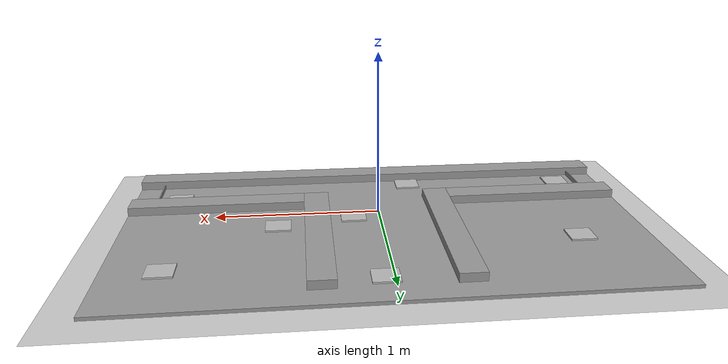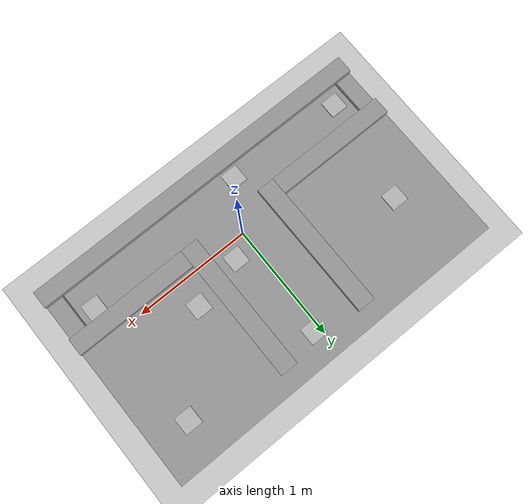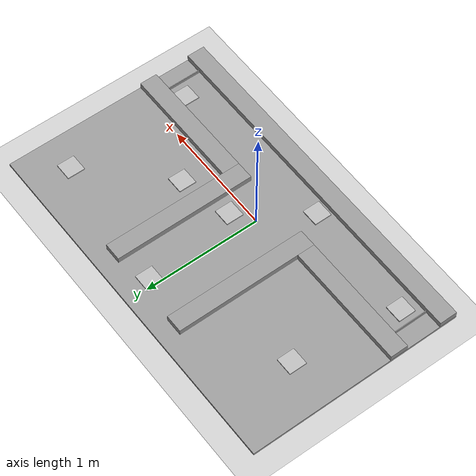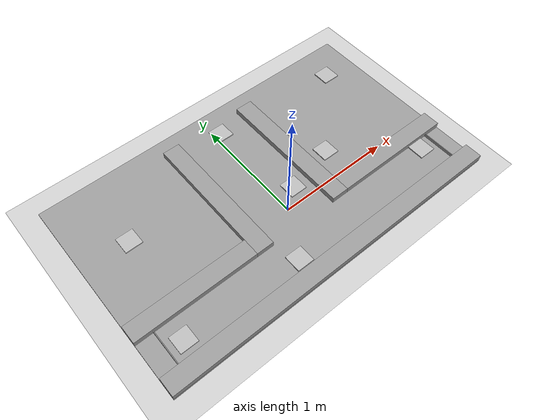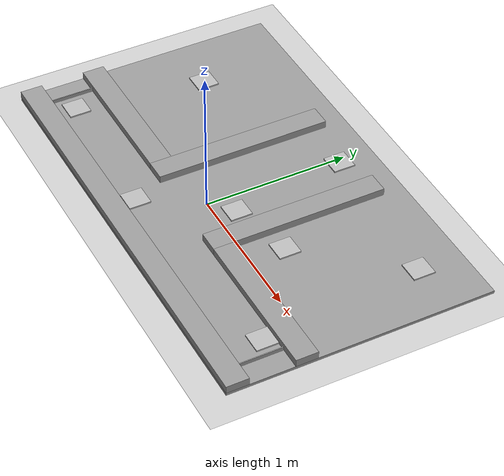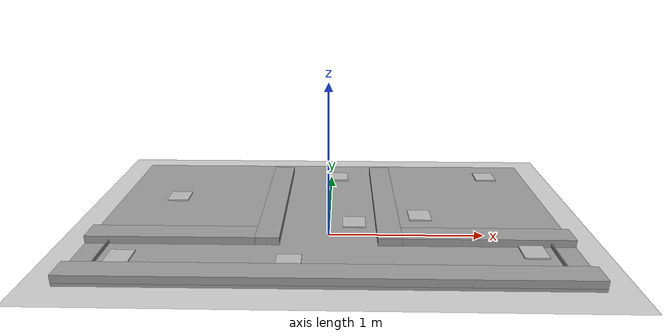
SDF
<sdf version="1.7">
 <world name="default">
  <light name="sun" type="directional">
   <pose>0 0 10 0 -0 0</pose>
   <diffuse>0.8 0.8 0.8 1</diffuse>
   <specular>0.2 0.2 0.2 1</specular>
   <attenuation>
    <range>1000</range>
    <constant>0.9</constant>
    <linear>0.01</linear>
    <quadratic>0.001</quadratic>
   </attenuation>
   <direction>-0.5 0.1 -0.9</direction>
   <spot><inner_angle>0</inner_angle><outer_angle>0</outer_angle><falloff>0</falloff></spot>
  </light>
  <model name="ground_plane">
   <static>1</static>
   <link name="link">
    <collision name="collision">
     <geometry><plane><normal>0 0 1</normal><size>100 100</size></plane></geometry>
     <surface>
      <contact><collide_bitmask>65535</collide_bitmask></contact>
      <friction><ode><mu>100</mu><mu2>50</mu2></ode></friction>
     </surface>
    </collision>
    <visual name="visual">
     <cast_shadows>0</cast_shadows>
     <geometry><plane><normal>0 0 1</normal><size>100 100</size></plane></geometry>
     <material>
      <script><uri>file://media/materials/scripts/gazebo.material</uri><name>Gazebo/Grey</name></script>
     </material>
    </visual>
   </link>
  </model>
  <gravity>0 0 -9.8</gravity>
  <magnetic_field>6e-06 2.3e-05 -4.2e-05</magnetic_field>
  <atmosphere type="adiabatic"/>
  <physics type="ode">
   <max_step_size>0.001</max_step_size>
   <real_time_factor>1</real_time_factor>
   <real_time_update_rate>1000</real_time_update_rate>
  </physics>
  <scene><ambient>0.4 0.4 0.4 1</ambient><background>0.7 0.7 0.7 1</background><shadows>1</shadows></scene>
  <spherical_coordinates>
   <surface_model>EARTH_WGS84</surface_model>
   <latitude_deg>0</latitude_deg>
   <longitude_deg>0</longitude_deg>
   <elevation>0</elevation>
   <heading_deg>0</heading_deg>
  </spherical_coordinates>
  <model name="nosignal_ps1.world">
   <link name="link_0">
    <inertial>
     <mass>1</mass>
     <inertia>
      <ixx>0.166667</ixx>
      <ixy>0</ixy>
      <ixz>0</ixz>
      <iyy>0.166667</iyy>
      <iyz>0</iyz>
      <izz>0.166667</izz>
     </inertia>
    </inertial>
    <pose>0 0.314325 -0.0278 0 -0 0</pose>
    <visual name="visual">
     <geometry><box><size>3.048 1.8288 0.02</size></box></geometry>
     <material>
      <lighting>1</lighting>
      <script><uri>file://media/materials/scripts/gazebo.material</uri><name>Gazebo/Grey</name></script>
      <shader type="pixel"><normal_map>__default__</normal_map></shader>
      <ambient>0.3 0.3 0.3 1</ambient>
      <diffuse>0.7 0.7 0.7 1</diffuse>
      <specular>0.01 0.01 0.01 1</specular>
      <emissive>0 0 0 1</emissive>
     </material>
    </visual>
    <collision name="collision">
     <geometry><box><size>3.048 1.8288 0.02</size></box></geometry>
     <surface>
      <friction>
       <ode><mu>1</mu><mu2>1</mu2><fdir1>0 0 0</fdir1><slip1>0</slip1><slip2>0</slip2></ode>
       <torsional>
        <coefficient>1</coefficient>
        <patch_radius>0</patch_radius>
        <surface_radius>0</surface_radius>
        <use_patch_radius>1</use_patch_radius>
        <ode><slip>0</slip></ode>
       </torsional>
      </friction>
      <bounce><restitution_coefficient>0</restitution_coefficient><threshold>1e+06</threshold></bounce>
      <contact>
       <collide_without_contact>0</collide_without_contact>
       <collide_without_contact_bitmask>1</collide_without_contact_bitmask>
       <collide_bitmask>1</collide_bitmask>
       <ode>
        <soft_cfm>0</soft_cfm>
        <soft_erp>0.2</soft_erp>
        <kp>1e+13</kp>
        <kd>1</kd>
        <max_vel>0.01</max_vel>
        <min_depth>0</min_depth>
       </ode>
       <bullet>
        <split_impulse>1</split_impulse>
        <split_impulse_penetration_threshold>-0.01</split_impulse_penetration_threshold>
        <soft_cfm>0</soft_cfm>
        <soft_erp>0.2</soft_erp>
        <kp>1e+13</kp>
        <kd>1</kd>
       </bullet>
      </contact>
     </surface>
    </collision>
   </link>
   <link name="link_1">
    <inertial>
     <mass>1</mass>
     <inertia>
      <ixx>0.166667</ixx>
      <ixy>0</ixy>
      <ixz>0</ixz>
      <iyy>0.166667</iyy>
      <iyz>0</iyz>
      <izz>0.166667</izz>
     </inertia>
    </inertial>
    <pose>0.381 0.466725 0.0076 0 -0 0</pose>
    <visual name="visual">
     <geometry><box><size>0.1524 1.2192 0.0508</size></box></geometry>
     <material>
      <lighting>1</lighting>
      <script><uri>file://media/materials/scripts/gazebo.material</uri><name>Gazebo/Grey</name></script>
      <shader type="pixel"><normal_map>__default__</normal_map></shader>
      <ambient>0.3 0.3 0.3 1</ambient>
      <diffuse>0.7 0.7 0.7 1</diffuse>
      <specular>0.01 0.01 0.01 1</specular>
      <emissive>0 0 0 1</emissive>
     </material>
    </visual>
    <collision name="collision">
     <geometry><box><size>0.1524 1.2192 0.0708</size></box></geometry>
     <surface>
      <friction>
       <ode><mu>1</mu><mu2>1</mu2><fdir1>0 0 0</fdir1><slip1>0</slip1><slip2>0</slip2></ode>
       <torsional>
        <coefficient>1</coefficient>
        <patch_radius>0</patch_radius>
        <surface_radius>0</surface_radius>
        <use_patch_radius>1</use_patch_radius>
        <ode><slip>0</slip></ode>
       </torsional>
      </friction>
      <bounce><restitution_coefficient>0</restitution_coefficient><threshold>1e+06</threshold></bounce>
      <contact>
       <collide_without_contact>0</collide_without_contact>
       <collide_without_contact_bitmask>1</collide_without_contact_bitmask>
       <collide_bitmask>1</collide_bitmask>
       <ode>
        <soft_cfm>0</soft_cfm>
        <soft_erp>0.2</soft_erp>
        <kp>1e+13</kp>
        <kd>1</kd>
        <max_vel>0.01</max_vel>
        <min_depth>0</min_depth>
       </ode>
       <bullet>
        <split_impulse>1</split_impulse>
        <split_impulse_penetration_threshold>-0.01</split_impulse_penetration_threshold>
        <soft_cfm>0</soft_cfm>
        <soft_erp>0.2</soft_erp>
        <kp>1e+13</kp>
        <kd>1</kd>
       </bullet>
      </contact>
     </surface>
    </collision>
   </link>
   <link name="link_2">
    <inertial>
     <mass>1</mass>
     <inertia>
      <ixx>0.166667</ixx>
      <ixy>0</ixy>
      <ixz>0</ixz>
      <iyy>0.166667</iyy>
      <iyz>0</iyz>
      <izz>0.166667</izz>
     </inertia>
    </inertial>
    <pose>-0.381 0.466725 0.0076 0 -0 0</pose>
    <visual name="visual">
     <geometry><box><size>0.1524 1.2192 0.0508</size></box></geometry>
     <material>
      <lighting>1</lighting>
      <script><uri>file://media/materials/scripts/gazebo.material</uri><name>Gazebo/Grey</name></script>
      <shader type="pixel"><normal_map>__default__</normal_map></shader>
      <ambient>0.3 0.3 0.3 1</ambient>
      <diffuse>0.7 0.7 0.7 1</diffuse>
      <specular>0.01 0.01 0.01 1</specular>
      <emissive>0 0 0 1</emissive>
     </material>
    </visual>
    <collision name="collision">
     <geometry><box><size>0.1524 1.2192 0.0508</size></box></geometry>
     <surface>
      <friction>
       <ode><mu>1</mu><mu2>1</mu2><fdir1>0 0 0</fdir1><slip1>0</slip1><slip2>0</slip2></ode>
       <torsional>
        <coefficient>1</coefficient>
        <patch_radius>0</patch_radius>
        <surface_radius>0</surface_radius>
        <use_patch_radius>1</use_patch_radius>
        <ode><slip>0</slip></ode>
       </torsional>
      </friction>
      <bounce><restitution_coefficient>0</restitution_coefficient><threshold>1e+06</threshold></bounce>
      <contact>
       <collide_without_contact>0</collide_without_contact>
       <collide_without_contact_bitmask>1</collide_without_contact_bitmask>
       <collide_bitmask>1</collide_bitmask>
       <ode>
        <soft_cfm>0</soft_cfm>
        <soft_erp>0.2</soft_erp>
        <kp>1e+13</kp>
        <kd>1</kd>
        <max_vel>0.01</max_vel>
        <min_depth>0</min_depth>
       </ode>
       <bullet>
        <split_impulse>1</split_impulse>
        <split_impulse_penetration_threshold>-0.01</split_impulse_penetration_threshold>
        <soft_cfm>0</soft_cfm>
        <soft_erp>0.2</soft_erp>
        <kp>1e+13</kp>
        <kd>1</kd>
       </bullet>
      </contact>
     </surface>
    </collision>
   </link>
   <link name="link_3">
    <inertial>
     <mass>1</mass>
     <inertia>
      <ixx>0.166667</ixx>
      <ixy>0</ixy>
      <ixz>0</ixz>
      <iyy>0.166667</iyy>
      <iyz>0</iyz>
      <izz>0.166667</izz>
     </inertia>
    </inertial>
    <pose>0.9906 -0.066675 0.0076 0 -0 0</pose>
    <visual name="visual">
     <geometry><box><size>1.0668 0.1524 0.0508</size></box></geometry>
     <material>
      <lighting>1</lighting>
      <script><uri>file://media/materials/scripts/gazebo.material</uri><name>Gazebo/Grey</name></script>
      <shader type="pixel"><normal_map>__default__</normal_map></shader>
      <ambient>0.3 0.3 0.3 1</ambient>
      <diffuse>0.7 0.7 0.7 1</diffuse>
      <specular>0.01 0.01 0.01 1</specular>
      <emissive>0 0 0 1</emissive>
     </material>
    </visual>
    <collision name="collision">
     <geometry><box><size>1.0668 0.1524 0.0508</size></box></geometry>
     <surface>
      <friction>
       <ode><mu>1</mu><mu2>1</mu2><fdir1>0 0 0</fdir1><slip1>0</slip1><slip2>0</slip2></ode>
       <torsional>
        <coefficient>1</coefficient>
        <patch_radius>0</patch_radius>
        <surface_radius>0</surface_radius>
        <use_patch_radius>1</use_patch_radius>
        <ode><slip>0</slip></ode>
       </torsional>
      </friction>
      <bounce><restitution_coefficient>0</restitution_coefficient><threshold>1e+06</threshold></bounce>
      <contact>
       <collide_without_contact>0</collide_without_contact>
       <collide_without_contact_bitmask>1</collide_without_contact_bitmask>
       <collide_bitmask>1</collide_bitmask>
       <ode>
        <soft_cfm>0</soft_cfm>
        <soft_erp>0.2</soft_erp>
        <kp>1e+13</kp>
        <kd>1</kd>
        <max_vel>0.01</max_vel>
        <min_depth>0</min_depth>
       </ode>
       <bullet>
        <split_impulse>1</split_impulse>
        <split_impulse_penetration_threshold>-0.01</split_impulse_penetration_threshold>
        <soft_cfm>0</soft_cfm>
        <soft_erp>0.2</soft_erp>
        <kp>1e+13</kp>
        <kd>1</kd>
       </bullet>
      </contact>
     </surface>
    </collision>
   </link>
   <link name="link_4">
    <inertial>
     <mass>1</mass>
     <inertia>
      <ixx>0.166667</ixx>
      <ixy>0</ixy>
      <ixz>0</ixz>
      <iyy>0.166667</iyy>
      <iyz>0</iyz>
      <izz>0.166667</izz>
     </inertia>
    </inertial>
    <pose>-0.9906 -0.066675 0.0076 0 -0 0</pose>
    <visual name="visual">
     <geometry><box><size>1.0668 0.1524 0.0508</size></box></geometry>
     <material>
      <lighting>1</lighting>
      <script><uri>file://media/materials/scripts/gazebo.material</uri><name>Gazebo/Grey</name></script>
      <shader type="pixel"><normal_map>__default__</normal_map></shader>
      <ambient>0.3 0.3 0.3 1</ambient>
      <diffuse>0.7 0.7 0.7 1</diffuse>
      <specular>0.01 0.01 0.01 1</specular>
      <emissive>0 0 0 1</emissive>
     </material>
    </visual>
    <collision name="collision">
     <geometry><box><size>1.0668 0.1524 0.0508</size></box></geometry>
     <surface>
      <friction>
       <ode><mu>1</mu><mu2>1</mu2><fdir1>0 0 0</fdir1><slip1>0</slip1><slip2>0</slip2></ode>
       <torsional>
        <coefficient>1</coefficient>
        <patch_radius>0</patch_radius>
        <surface_radius>0</surface_radius>
        <use_patch_radius>1</use_patch_radius>
        <ode><slip>0</slip></ode>
       </torsional>
      </friction>
      <bounce><restitution_coefficient>0</restitution_coefficient><threshold>1e+06</threshold></bounce>
      <contact>
       <collide_without_contact>0</collide_without_contact>
       <collide_without_contact_bitmask>1</collide_without_contact_bitmask>
       <collide_bitmask>1</collide_bitmask>
       <ode>
        <soft_cfm>0</soft_cfm>
        <soft_erp>0.2</soft_erp>
        <kp>1e+13</kp>
        <kd>1</kd>
        <max_vel>0.01</max_vel>
        <min_depth>0</min_depth>
       </ode>
       <bullet>
        <split_impulse>1</split_impulse>
        <split_impulse_penetration_threshold>-0.01</split_impulse_penetration_threshold>
        <soft_cfm>0</soft_cfm>
        <soft_erp>0.2</soft_erp>
        <kp>1e+13</kp>
        <kd>1</kd>
       </bullet>
      </contact>
     </surface>
    </collision>
   </link>
   <link name="link_5">
    <inertial>
     <mass>1</mass>
     <inertia>
      <ixx>0.166667</ixx>
      <ixy>0</ixy>
      <ixz>0</ixz>
      <iyy>0.166667</iyy>
      <iyz>0</iyz>
      <izz>0.166667</izz>
     </inertia>
    </inertial>
    <pose>0 -0.523875 0.0076 0 -0 0</pose>
    <visual name="visual">
     <geometry><box><size>3.048 0.1524 0.0508</size></box></geometry>
     <material>
      <lighting>1</lighting>
      <script><uri>file://media/materials/scripts/gazebo.material</uri><name>Gazebo/Grey</name></script>
      <shader type="pixel"><normal_map>__default__</normal_map></shader>
      <ambient>0.3 0.3 0.3 1</ambient>
      <diffuse>0.7 0.7 0.7 1</diffuse>
      <specular>0.01 0.01 0.01 1</specular>
      <emissive>0 0 0 1</emissive>
     </material>
    </visual>
    <collision name="collision">
     <geometry><box><size>3.048 0.1524 0.0508</size></box></geometry>
     <surface>
      <friction>
       <ode><mu>1</mu><mu2>1</mu2><fdir1>0 0 0</fdir1><slip1>0</slip1><slip2>0</slip2></ode>
       <torsional>
        <coefficient>1</coefficient>
        <patch_radius>0</patch_radius>
        <surface_radius>0</surface_radius>
        <use_patch_radius>1</use_patch_radius>
        <ode><slip>0</slip></ode>
       </torsional>
      </friction>
      <bounce><restitution_coefficient>0</restitution_coefficient><threshold>1e+06</threshold></bounce>
      <contact>
       <collide_without_contact>0</collide_without_contact>
       <collide_without_contact_bitmask>1</collide_without_contact_bitmask>
       <collide_bitmask>1</collide_bitmask>
       <ode>
        <soft_cfm>0</soft_cfm>
        <soft_erp>0.2</soft_erp>
        <kp>1e+13</kp>
        <kd>1</kd>
        <max_vel>0.01</max_vel>
        <min_depth>0</min_depth>
       </ode>
       <bullet>
        <split_impulse>1</split_impulse>
        <split_impulse_penetration_threshold>-0.01</split_impulse_penetration_threshold>
        <soft_cfm>0</soft_cfm>
        <soft_erp>0.2</soft_erp>
        <kp>1e+13</kp>
        <kd>1</kd>
       </bullet>
      </contact>
     </surface>
    </collision>
   </link>
   <link name="link_6">
    <inertial>
     <mass>1</mass>
     <inertia>
      <ixx>0.166667</ixx>
      <ixy>0</ixy>
      <ixz>0</ixz>
      <iyy>0.166667</iyy>
      <iyz>0</iyz>
      <izz>0.166667</izz>
     </inertia>
    </inertial>
    <pose>1.3716 -0.295275 -0.0051 0 -0 0</pose>
    <visual name="visual">
     <geometry><box><size>0.00635 0.3048 0.0254</size></box></geometry>
     <material>
      <lighting>1</lighting>
      <script><uri>file://media/materials/scripts/gazebo.material</uri><name>Gazebo/Grey</name></script>
      <shader type="pixel"><normal_map>__default__</normal_map></shader>
      <ambient>0.3 0.3 0.3 1</ambient>
      <diffuse>0.7 0.7 0.7 1</diffuse>
      <specular>0.01 0.01 0.01 1</specular>
      <emissive>0 0 0 1</emissive>
     </material>
    </visual>
    <collision name="collision">
     <geometry><box><size>0.00635 0.3048 0.0254</size></box></geometry>
     <surface>
      <friction>
       <ode><mu>1</mu><mu2>1</mu2><fdir1>0 0 0</fdir1><slip1>0</slip1><slip2>0</slip2></ode>
       <torsional>
        <coefficient>1</coefficient>
        <patch_radius>0</patch_radius>
        <surface_radius>0</surface_radius>
        <use_patch_radius>1</use_patch_radius>
        <ode><slip>0</slip></ode>
       </torsional>
      </friction>
      <bounce><restitution_coefficient>0</restitution_coefficient><threshold>1e+06</threshold></bounce>
      <contact>
       <collide_without_contact>0</collide_without_contact>
       <collide_without_contact_bitmask>1</collide_without_contact_bitmask>
       <collide_bitmask>1</collide_bitmask>
       <ode>
        <soft_cfm>0</soft_cfm>
        <soft_erp>0.2</soft_erp>
        <kp>1e+13</kp>
        <kd>1</kd>
        <max_vel>0.01</max_vel>
        <min_depth>0</min_depth>
       </ode>
       <bullet>
        <split_impulse>1</split_impulse>
        <split_impulse_penetration_threshold>-0.01</split_impulse_penetration_threshold>
        <soft_cfm>0</soft_cfm>
        <soft_erp>0.2</soft_erp>
        <kp>1e+13</kp>
        <kd>1</kd>
       </bullet>
      </contact>
     </surface>
    </collision>
   </link>
   <link name="link_7">
    <inertial>
     <mass>1</mass>
     <inertia>
      <ixx>0.166667</ixx>
      <ixy>0</ixy>
      <ixz>0</ixz>
      <iyy>0.166667</iyy>
      <iyz>0</iyz>
      <izz>0.166667</izz>
     </inertia>
    </inertial>
    <pose>-1.3716 -0.295275 -0.0051 0 -0 0</pose>
    <visual name="visual">
     <geometry><box><size>0.00635 0.3048 0.0254</size></box></geometry>
     <material>
      <lighting>1</lighting>
      <script><uri>file://media/materials/scripts/gazebo.material</uri><name>Gazebo/Grey</name></script>
      <shader type="pixel"><normal_map>__default__</normal_map></shader>
      <ambient>0.3 0.3 0.3 1</ambient>
      <diffuse>0.7 0.7 0.7 1</diffuse>
      <specular>0.01 0.01 0.01 1</specular>
      <emissive>0 0 0 1</emissive>
     </material>
    </visual>
    <collision name="collision">
     <geometry><box><size>0.00635 0.3048 0.0254</size></box></geometry>
     <surface>
      <friction>
       <ode><mu>1</mu><mu2>1</mu2><fdir1>0 0 0</fdir1><slip1>0</slip1><slip2>0</slip2></ode>
       <torsional>
        <coefficient>1</coefficient>
        <patch_radius>0</patch_radius>
        <surface_radius>0</surface_radius>
        <use_patch_radius>1</use_patch_radius>
        <ode><slip>0</slip></ode>
       </torsional>
      </friction>
      <bounce><restitution_coefficient>0</restitution_coefficient><threshold>1e+06</threshold></bounce>
      <contact>
       <collide_without_contact>0</collide_without_contact>
       <collide_without_contact_bitmask>1</collide_without_contact_bitmask>
       <collide_bitmask>1</collide_bitmask>
       <ode>
        <soft_cfm>0</soft_cfm>
        <soft_erp>0.2</soft_erp>
        <kp>1e+13</kp>
        <kd>1</kd>
        <max_vel>0.01</max_vel>
        <min_depth>0</min_depth>
       </ode>
       <bullet>
        <split_impulse>1</split_impulse>
        <split_impulse_penetration_threshold>-0.01</split_impulse_penetration_threshold>
        <soft_cfm>0</soft_cfm>
        <soft_erp>0.2</soft_erp>
        <kp>1e+13</kp>
        <kd>1</kd>
       </bullet>
      </contact>
     </surface>
    </collision>
   </link>
   <joint name="link_0_JOINT_1" type="fixed">
    <parent>link_0</parent>
    <child>link_1</child>
    <physics>
     <ode><limit><cfm>0</cfm><erp>0.2</erp></limit><suspension><cfm>0</cfm><erp>0.2</erp></suspension></ode>
    </physics>
   </joint>
   <joint name="link_0_JOINT_2" type="fixed">
    <parent>link_0</parent>
    <child>link_3</child>
    <physics>
     <ode><limit><cfm>0</cfm><erp>0.2</erp></limit><suspension><cfm>0</cfm><erp>0.2</erp></suspension></ode>
    </physics>
   </joint>
   <joint name="link_0_JOINT_3" type="fixed">
    <parent>link_0</parent>
    <child>link_4</child>
    <physics>
     <ode><limit><cfm>0</cfm><erp>0.2</erp></limit><suspension><cfm>0</cfm><erp>0.2</erp></suspension></ode>
    </physics>
   </joint>
   <joint name="link_0_JOINT_4" type="fixed">
    <parent>link_0</parent>
    <child>link_5</child>
    <physics>
     <ode><limit><cfm>0</cfm><erp>0.2</erp></limit><suspension><cfm>0</cfm><erp>0.2</erp></suspension></ode>
    </physics>
   </joint>
   <joint name="link_0_JOINT_5" type="fixed">
    <parent>link_0</parent>
    <child>link_6</child>
    <physics>
     <ode><limit><cfm>0</cfm><erp>0.2</erp></limit><suspension><cfm>0</cfm><erp>0.2</erp></suspension></ode>
    </physics>
   </joint>
   <joint name="link_0_JOINT_6" type="fixed">
    <parent>link_0</parent>
    <child>link_7</child>
    <physics>
     <ode><limit><cfm>0</cfm><erp>0.2</erp></limit><suspension><cfm>0</cfm><erp>0.2</erp></suspension></ode>
    </physics>
   </joint>
   <joint name="link_0_JOINT_7" type="fixed">
    <parent>link_0</parent>
    <child>link_2</child>
    <physics>
     <ode><limit><cfm>0</cfm><erp>0.2</erp></limit><suspension><cfm>0</cfm><erp>0.2</erp></suspension></ode>
    </physics>
   </joint>
   <static>0</static>
   <pose>0.002928 -0.041602 0.037795 0 4e-06 0.002422</pose>
  </model>
  <model name="Apriltag36_11_00000">
   <link name="main">
    <visual name="main_Visual">
     <geometry><box><size>0.15 0.15 0.01</size></box></geometry>
     <material>
      <script>
       <uri>model://Apriltag36_11_00000/materials/scripts</uri>
       <uri>model://Apriltag36_11_00000/materials/textures</uri>
       <name>Apriltag36_11_00000</name>
      </script>
     </material>
    </visual>
   </link>
   <static>1</static>
   <pose>-1.24042 -0.360868 0.028025 0 -0 0</pose>
  </model>
  <model name="Apriltag36_11_00001">
   <link name="main">
    <visual name="main_Visual">
     <geometry><box><size>0.15 0.15 0.01</size></box></geometry>
     <material>
      <script>
       <uri>model://Apriltag36_11_00001/materials/scripts</uri>
       <uri>model://Apriltag36_11_00001/materials/textures</uri>
       <name>Apriltag36_11_00001</name>
      </script>
     </material>
    </visual>
   </link>
   <static>1</static>
   <pose>1.24518 -0.2559 0.026718 0 -0 0</pose>
  </model>
  <model name="Apriltag36_11_00002">
   <link name="main">
    <visual name="main_Visual">
     <geometry><box><size>0.15 0.15 0.01</size></box></geometry>
     <material>
      <script>
       <uri>model://Apriltag36_11_00002/materials/scripts</uri>
       <uri>model://Apriltag36_11_00002/materials/textures</uri>
       <name>Apriltag36_11_00002</name>
      </script>
     </material>
    </visual>
   </link>
   <static>1</static>
   <pose>-1.11077 0.530804 0.025923 0 -0 0</pose>
  </model>
  <model name="Apriltag36_11_00003">
   <link name="main">
    <visual name="main_Visual">
     <geometry><box><size>0.15 0.15 0.01</size></box></geometry>
     <material>
      <script>
       <uri>model://Apriltag36_11_00003/materials/scripts</uri>
       <uri>model://Apriltag36_11_00003/materials/textures</uri>
       <name>Apriltag36_11_00003</name>
      </script>
     </material>
    </visual>
   </link>
   <static>1</static>
   <pose>0.055381 0.934921 0.027138 0 -0 0</pose>
  </model>
  <model name="Apriltag36_11_00004">
   <link name="main">
    <visual name="main_Visual">
     <geometry><box><size>0.15 0.15 0.01</size></box></geometry>
     <material>
      <script>
       <uri>model://Apriltag36_11_00004/materials/scripts</uri>
       <uri>model://Apriltag36_11_00004/materials/textures</uri>
       <name>Apriltag36_11_00004</name>
      </script>
     </material>
    </visual>
   </link>
   <static>1</static>
   <pose>-0.227384 -0.394963 0.028811 0 -0 0</pose>
  </model>
  <model name="Apriltag36_11_00005">
   <link name="main">
    <visual name="main_Visual">
     <geometry><box><size>0.15 0.15 0.01</size></box></geometry>
     <material>
      <script>
       <uri>model://Apriltag36_11_00005/materials/scripts</uri>
       <uri>model://Apriltag36_11_00005/materials/textures</uri>
       <name>Apriltag36_11_00005</name>
      </script>
     </material>
    </visual>
   </link>
   <static>1</static>
   <pose>0.614684 0.234998 0.027575 0 -0 0</pose>
  </model>
  <model name="Apriltag36_11_00006">
   <link name="main">
    <visual name="main_Visual">
     <geometry><box><size>0.15 0.15 0.01</size></box></geometry>
     <material>
      <script>
       <uri>model://Apriltag36_11_00006/materials/scripts</uri>
       <uri>model://Apriltag36_11_00006/materials/textures</uri>
       <name>Apriltag36_11_00006</name>
      </script>
     </material>
    </visual>
   </link>
   <static>1</static>
   <pose>1.1902 0.85132 0.068893 0 -0 0</pose>
  </model>
  <model name="Apriltag36_11_00007">
   <link name="main">
    <visual name="main_Visual">
     <geometry><box><size>0.15 0.15 0.01</size></box></geometry>
     <material>
      <script>
       <uri>model://Apriltag36_11_00007/materials/scripts</uri>
       <uri>model://Apriltag36_11_00007/materials/textures</uri>
       <name>Apriltag36_11_00007</name>
      </script>
     </material>
    </visual>
   </link>
   <static>1</static>
   <pose>0.166132 0.127819 0.027203 0 -0 0</pose>
  </model>
 </world>
</sdf>
